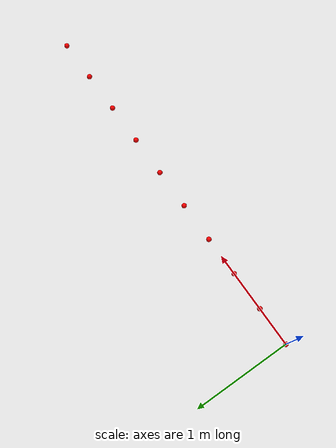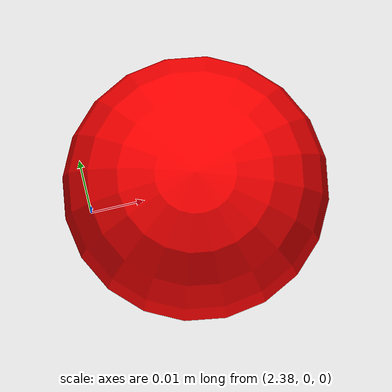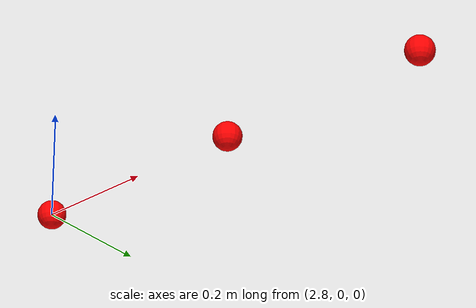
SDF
<?xml version="1.0" ?>
<sdf version="1.6">
  <model name="barrage">

    <link name="attachment_link">
      <pose>0 0 0 0 0 1.51</pose>
    </link>

    <link name="attachment_link_2">
      <pose>3.8 0 0 0 0 1.51</pose>
    </link>

    <include>
      <pose>0 0 0 0 0 0</pose>
      <uri>model://barrage_buoy</uri>
      <name>sphere1</name>
    </include>

    <include>
      <pose>0.4 0 0 0 0 0</pose>
      <uri>model://barrage_buoy</uri>
      <name>sphere2</name>
    </include>

    <include>
      <pose>0.8 0 0 0 0 0</pose>
      <uri>model://barrage_buoy</uri>
      <name>sphere3</name>
    </include>

    <include>
      <pose>1.2 0 0 0 0 0</pose>
      <uri>model://barrage_buoy</uri>
      <name>sphere4</name>
    </include>

    <include>
      <pose>1.6 0 0 0 0 0</pose>
      <uri>model://barrage_buoy</uri>
      <name>sphere5</name>
    </include>

    <include>
      <pose>2.0 0 0 0 0 0</pose>
      <uri>model://barrage_buoy</uri>
      <name>sphere6</name>
    </include>

    <include>
      <pose>2.4 0 0 0 0 0</pose>
      <uri>model://barrage_buoy</uri>
      <name>sphere7</name>
    </include>

    <include>
      <pose>2.8 0 0 0 0 0</pose>
      <uri>model://barrage_buoy</uri>
      <name>sphere8</name>
    </include>

    <include>
      <pose>3.2 0 0 0 0 0</pose>
      <uri>model://barrage_buoy</uri>
      <name>sphere9</name>
    </include>

    <include>
      <pose>3.6 0 0 0 0 0</pose>
      <uri>model://barrage_buoy</uri>
      <name>sphere10</name>
    </include>

    <joint name="joint1" type="universal">
      <parent>sphere1</parent>
      <child>sphere2</child>
      <axis>
        <xyz>0 1 0</xyz>
        <limit>
          <lower>-0.05</lower>
          <upper>0.05</upper>
        </limit>
      </axis>
      <axis2>
        <xyz>1 0 0</xyz>
        <limit>
          <lower>-0.05</lower>
          <upper>0.05</upper>
        </limit>
      </axis2>
      <pose>0.2 0 0 0 0 0</pose>
    </joint>

    <joint name="joint2" type="universal">
      <parent>sphere2</parent>
      <child>sphere3</child>
      <axis>
        <xyz>0 1 0</xyz>
        <limit>
          <lower>-0.05</lower>
          <upper>0.05</upper>
        </limit>
      </axis>
      <axis2>
        <xyz>1 0 0</xyz>
        <limit>
          <lower>-0.05</lower>
          <upper>0.05</upper>
        </limit>
      </axis2>
      <pose>0.6 0 0 0 0 0</pose>
    </joint>

    <joint name="joint3" type="universal">
      <parent>sphere3</parent>
      <child>sphere4</child>
      <axis>
        <xyz>0 1 0</xyz>
        <limit>
          <lower>-0.05</lower>
          <upper>0.05</upper>
        </limit>
      </axis>
      <axis2>
        <xyz>1 0 0</xyz>
        <limit>
          <lower>-0.05</lower>
          <upper>0.05</upper>
        </limit>
      </axis2>
      <pose>1.0 0 0 0 0 0</pose>
    </joint>

    <joint name="joint4" type="universal">
      <parent>sphere4</parent>
      <child>sphere5</child>
      <axis>
        <xyz>0 1 0</xyz>
        <limit>
          <lower>-0.05</lower>
          <upper>0.05</upper>
        </limit>
      </axis>
      <axis2>
        <xyz>1 0 0</xyz>
        <limit>
          <lower>-0.05</lower>
          <upper>0.05</upper>
        </limit>
      </axis2>
      <pose>1.4 0 0 0 0 0</pose>
    </joint>

    <joint name="joint5" type="universal">
      <parent>sphere5</parent>
      <child>sphere6</child>
      <axis>
        <xyz>0 1 0</xyz>
        <limit>
          <lower>-0.05</lower>
          <upper>0.05</upper>
        </limit>
      </axis>
      <axis2>
        <xyz>1 0 0</xyz>
        <limit>
          <lower>-0.05</lower>
          <upper>0.05</upper>
        </limit>
      </axis2>
      <pose>1.8 0 0 0 0 0</pose>
    </joint>

    <joint name="joint6" type="universal">
      <parent>sphere6</parent>
      <child>sphere7</child>
      <axis>
        <xyz>0 1 0</xyz>
        <limit>
          <lower>-0.05</lower>
          <upper>0.05</upper>
        </limit>
      </axis>
      <axis2>
        <xyz>1 0 0</xyz>
        <limit>
          <lower>-0.05</lower>
          <upper>0.05</upper>
        </limit>
      </axis2>
      <pose>2.2 0 0 0 0 0</pose>
    </joint>

    <joint name="joint7" type="universal">
      <parent>sphere7</parent>
      <child>sphere8</child>
      <axis>
        <xyz>0 1 0</xyz>
        <limit>
          <lower>-0.05</lower>
          <upper>0.05</upper>
        </limit>
      </axis>
      <axis2>
        <xyz>1 0 0</xyz>
        <limit>
          <lower>-0.05</lower>
          <upper>0.05</upper>
        </limit>
      </axis2>
      <pose>2.6 0 0 0 0 0</pose>
    </joint>

    <joint name="joint8" type="universal">
      <parent>sphere8</parent>
      <child>sphere9</child>
      <axis>
        <xyz>0 1 0</xyz>
        <limit>
          <lower>-0.05</lower>
          <upper>0.05</upper>
        </limit>
      </axis>
      <axis2>
        <xyz>1 0 0</xyz>
        <limit>
          <lower>-0.05</lower>
          <upper>0.05</upper>
        </limit>
      </axis2>
      <pose>3.0 0 0 0 0 0</pose>
    </joint>

    <joint name="joint9" type="universal">
      <parent>sphere9</parent>
      <child>sphere10</child>
      <axis>
        <xyz>0 1 0</xyz>
        <limit>
          <lower>-0.05</lower>
          <upper>0.05</upper>
        </limit>
      </axis>
      <axis2>
        <xyz>1 0 0</xyz>
        <limit>
          <lower>-0.05</lower>
          <upper>0.05</upper>
        </limit>
      </axis2>
      <pose>3.4 0 0 0 0 0</pose>
    </joint>

  </model>
</sdf>

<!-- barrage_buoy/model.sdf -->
<sdf version="1.6">
  <model name="barrage_buoy">
    <plugin
        filename="gz-waves1-hydrodynamics-system"
        name="gz::sim::systems::Hydrodynamics">
         <!-- Ocean current vector -->
    <!-- 45-degree current with magnitude 1 m/s -->

    <!-- https://gazebosim.org/api/sim/8/theory_hydrodynamics.html -->

     <!-- 90-degree current with magnitude 1 m/s -->

    <!-- 135-degree current with magnitude 1 m/s -->

     <!-- 270-degree current with magnitude 1 m/s -->
    </plugin>
    <link name="base_link">
      <visual name="visual">
        <geometry>
          <sphere>
            <radius>0.025</radius>
          </sphere>
        </geometry>
        <material>
          <ambient>1.0 0.0 0.0 1.0</ambient>  <!-- Bright red -->
          <diffuse>1.0 0.0 0.0 1.0</diffuse>  <!-- Bright red -->
          <specular>0.8 0.8 0.8 1.0</specular> <!-- Slightly reflective -->
        </material>
      </visual>
      <collision name="collision">
        <geometry>
          <sphere>
            <radius>0.01</radius>
          </sphere>
        </geometry>
      </collision>
      <inertial>
        <mass>0.00429</mass> <!-- Reduced mass for neutral buoyancy -->
        <inertia>
          <!-- Recalculated based on the solid sphere inertia formula -->
          <ixx>0.00000006</ixx> <!-- 2/5 * mass * radius^2 -->
          <ixy>0.0</ixy>
          <ixz>0.0</ixz>
          <iyy>0.00000006</iyy>
          <iyz>0.0</iyz>
          <izz>0.00000006</izz>
        </inertia>
      </inertial>
    </link>
  </model>
</sdf>
